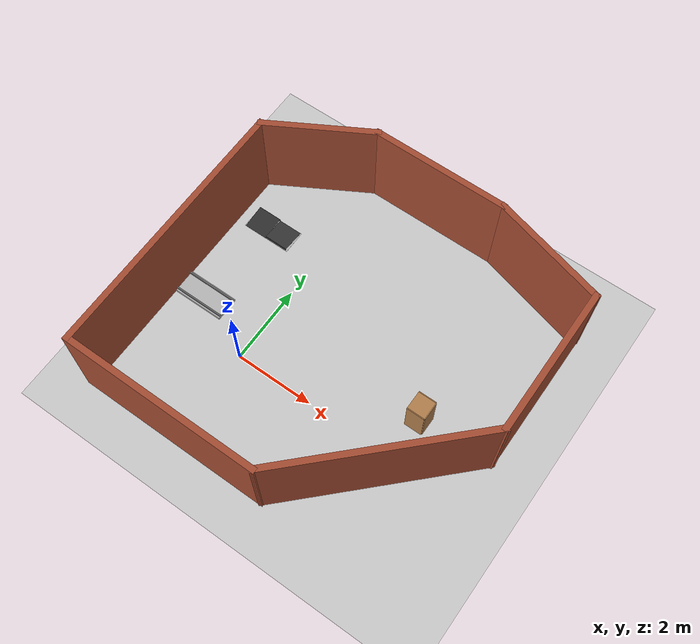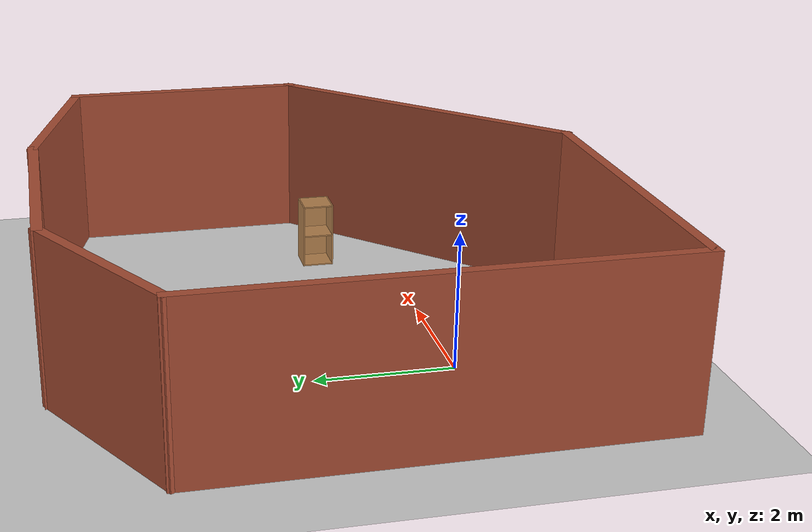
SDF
<sdf version="1.6">
 <world name="default">
  <light name="sun" type="directional">
   <pose>0 0 10 0 -0 0</pose>
   <diffuse>0.8 0.8 0.8 1</diffuse>
   <specular>0.1 0.1 0.1 1</specular>
   <attenuation>
    <range>1000</range>
    <constant>0.9</constant>
    <linear>0.01</linear>
    <quadratic>0.001</quadratic>
   </attenuation>
   <direction>-0.5 0.5 -1</direction>
  </light>
  <model name="ground_plane">
   <static>1</static>
   <link name="link">
    <collision name="collision">
     <geometry><plane><normal>0 0 1</normal><size>100 100</size></plane></geometry>
     <surface><friction><ode><mu>100</mu><mu2>50</mu2></ode></friction></surface>
    </collision>
    <visual name="visual">
     <cast_shadows>0</cast_shadows>
     <geometry><plane><normal>0 0 1</normal><size>100 100</size></plane></geometry>
     <material>
      <script><uri>file://media/materials/scripts/gazebo.material</uri><name>Gazebo/Grey</name></script>
     </material>
    </visual>
   </link>
  </model>
  <gravity>0 0 -9.8</gravity>
  <magnetic_field>6e-06 2.3e-05 -4.2e-05</magnetic_field>
  <atmosphere type="adiabatic"/>
  <physics name="default_physics" default="0" type="ode">
   <max_step_size>0.001</max_step_size>
   <real_time_factor>1</real_time_factor>
   <real_time_update_rate>1000</real_time_update_rate>
  </physics>
  <scene><ambient>0.4 0.4 0.4 1</ambient><background>0.7 0.7 0.7 1</background><shadows>1</shadows></scene>
  <spherical_coordinates>
   <surface_model>EARTH_WGS84</surface_model>
   <latitude_deg>0</latitude_deg>
   <longitude_deg>0</longitude_deg>
   <elevation>0</elevation>
   <heading_deg>0</heading_deg>
  </spherical_coordinates>
  <model name="frc2016_ramparts">
   <static>1</static>
   <link name="link">
    <visual name="platform">
     <pose>0 0 0.06967 0 -0 0</pose>
     <geometry><box><size>1.27 0.5969 0.003175</size></box></geometry>
    </visual>
    <collision name="platform">
     <pose>0 0 0.06967 0 -0 0</pose>
     <geometry><box><size>1.27 0.5969 0.003175</size></box></geometry>
    </collision>
    <visual name="ramp1">
     <pose>0.30472 0.00588 0.1109 -0.13 0 0</pose>
     <geometry><box><size>0.60957 0.588891 0.00462</size></box></geometry>
     <material><ambient>0.2 0.2 0.2 1</ambient><diffuse>0.2 0.2 0.2 1</diffuse></material>
    </visual>
    <collision name="ramp1">
     <pose>0.30472 0.00588 0.1109 -0.13 0 0</pose>
     <geometry><box><size>0.60957 0.588891 0.00462</size></box></geometry>
    </collision>
    <visual name="up1">
     <pose>0.30472 -0.28806 0.11072 0 -0 0</pose>
     <geometry><box><size>0.60957 0.00462 0.07872</size></box></geometry>
     <material><ambient>0.2 0.2 0.2 1</ambient><diffuse>0.2 0.2 0.2 1</diffuse></material>
    </visual>
    <collision name="up1">
     <pose>0.30472 -0.28806 0.11072 0 -0 0</pose>
     <geometry><box><size>0.60957 0.00462 0.07872</size></box></geometry>
    </collision>
    <visual name="ramp2">
     <pose>-0.30472 -0.00619 0.1109 0.13 -0 0</pose>
     <geometry><box><size>0.60957 0.588891 0.00462</size></box></geometry>
     <material><ambient>0.2 0.2 0.2 1</ambient><diffuse>0.2 0.2 0.2 1</diffuse></material>
    </visual>
    <collision name="ramp2">
     <pose>-0.30472 -0.00619 0.1109 0.13 -0 0</pose>
     <geometry><box><size>0.60957 0.588891 0.00462</size></box></geometry>
    </collision>
    <visual name="up2">
     <pose>-0.30472 0.28806 0.11072 0 -0 0</pose>
     <geometry><box><size>0.60957 0.00462 0.07872</size></box></geometry>
     <material><ambient>0.2 0.2 0.2 1</ambient><diffuse>0.2 0.2 0.2 1</diffuse></material>
    </visual>
    <collision name="up2">
     <pose>-0.30472 0.28806 0.11072 0 -0 0</pose>
     <geometry><box><size>0.60957 0.00462 0.07872</size></box></geometry>
    </collision>
   </link>
   <pose>-1.37724 3.11294 0 0 -0 0</pose>
  </model>
  <model name="frc2016_moat">
   <static>1</static>
   <link name="link">
    <inertial>
     <mass>10</mass>
     <pose>0 0 0.06738 0 -0 0</pose>
     <inertia><ixx>0.312195</ixx><ixy>0</ixy><ixz>0</ixz><iyy>1.35927</iyy><iyz>0</iyz><izz>1.64109</izz></inertia>
    </inertial>
    <visual name="platform">
     <pose>0 0 0.0381 0 -0 0</pose>
     <geometry><box><size>1.27 0.5969 0.0762</size></box></geometry>
    </visual>
    <collision name="platform">
     <pose>0 0 0.0381 0 -0 0</pose>
     <geometry><box><size>1.27 0.5969 0.0762</size></box></geometry>
    </collision>
    <visual name="tube1_side1">
     <pose>0 -0.25876 0.10301 0 -0 0</pose>
     <geometry><box><size>1.27 0.003175 0.0635</size></box></geometry>
     <material><ambient>0.46 0.46 0.46 1</ambient><diffuse>0.46 0.46 0.46 1</diffuse></material>
    </visual>
    <collision name="tube1_side1">
     <pose>0 -0.25876 0.10301 0 -0 0</pose>
     <geometry><box><size>1.27 0.003175 0.0635</size></box></geometry>
    </collision>
    <visual name="tube1_side2">
     <pose>0 -0.22384 0.10301 0 -0 0</pose>
     <geometry><box><size>1.27 0.003175 0.0635</size></box></geometry>
     <material><ambient>0.46 0.46 0.46 1</ambient><diffuse>0.46 0.46 0.46 1</diffuse></material>
    </visual>
    <collision name="tube1_side2">
     <pose>0 -0.22384 0.10301 0 -0 0</pose>
     <geometry><box><size>1.27 0.003175 0.0635</size></box></geometry>
    </collision>
    <visual name="tube1_top">
     <pose>0 -0.2413 0.13317 0 -0 0</pose>
     <geometry><box><size>1.27 0.0381 0.003175</size></box></geometry>
     <material><ambient>0.46 0.46 0.46 1</ambient><diffuse>0.46 0.46 0.46 1</diffuse></material>
    </visual>
    <collision name="tube1_top">
     <pose>0 -0.2413 0.13317 0 -0 0</pose>
     <geometry><box><size>1.27 0.0381 0.003175</size></box></geometry>
    </collision>
    <visual name="tube2_side1">
     <pose>0 0.22384 0.10301 0 -0 0</pose>
     <geometry><box><size>1.27 0.003175 0.0635</size></box></geometry>
     <material><ambient>0.46 0.46 0.46 1</ambient><diffuse>0.46 0.46 0.46 1</diffuse></material>
    </visual>
    <collision name="tube2_side1">
     <pose>0 0.22384 0.10301 0 -0 0</pose>
     <geometry><box><size>1.27 0.003175 0.0635</size></box></geometry>
    </collision>
    <visual name="tube2_side2">
     <pose>0 0.25876 0.10301 0 -0 0</pose>
     <geometry><box><size>1.27 0.003175 0.0635</size></box></geometry>
     <material><ambient>0.46 0.46 0.46 1</ambient><diffuse>0.46 0.46 0.46 1</diffuse></material>
    </visual>
    <collision name="tube2_side2">
     <pose>0 0.25876 0.10301 0 -0 0</pose>
     <geometry><box><size>1.27 0.003175 0.0635</size></box></geometry>
    </collision>
    <visual name="tube2_top">
     <pose>0 0.2413 0.13317 0 -0 0</pose>
     <geometry><box><size>1.27 0.0381 0.003175</size></box></geometry>
     <material><ambient>0.46 0.46 0.46 1</ambient><diffuse>0.46 0.46 0.46 1</diffuse></material>
    </visual>
    <collision name="tube2_top">
     <pose>0 0.2413 0.13317 0 -0 0</pose>
     <geometry><box><size>1.27 0.0381 0.003175</size></box></geometry>
    </collision>
   </link>
   <pose>-1.46925 0.657744 0.35629 0 -0 0</pose>
  </model>
  <model name="cabinet">
   <static>1</static>
   <link name="cabinet_bottom_plate">
    <inertial>
     <pose>0 0 -1 0 -0 0</pose>
     <inertia><ixx>2.05</ixx><ixy>0</ixy><ixz>0</ixz><iyy>2.05</iyy><iyz>0</iyz><izz>2.05</izz></inertia>
     <mass>25</mass>
    </inertial>
    <collision name="cabinet_bottom_plate_geom">
     <pose>0 0 0.01 0 -0 0</pose>
     <geometry><box><size>0.45 0.45 0.02</size></box></geometry>
    </collision>
    <visual name="cabinet_bottom_plate_geom_visual">
     <pose>0 0 0.01 0 -0 0</pose>
     <geometry><box><size>0.45 0.45 0.02</size></box></geometry>
     <material>
      <script><uri>file://media/materials/scripts/gazebo.material</uri><name>Gazebo/Wood</name></script>
     </material>
    </visual>
    <collision name="cabinet_bottom_plate_geom_cabinet_back_plate">
     <pose>0.235 0 0.51 0 -0 0</pose>
     <geometry><box><size>0.02 0.45 1.02</size></box></geometry>
    </collision>
    <visual name="cabinet_bottom_plate_geom_cabinet_back_plate_visual">
     <pose>0.235 0 0.51 0 -0 0</pose>
     <geometry><box><size>0.02 0.45 1.02</size></box></geometry>
     <material>
      <script><uri>file://media/materials/scripts/gazebo.material</uri><name>Gazebo/Wood</name></script>
     </material>
    </visual>
    <collision name="cabinet_bottom_plate_geom_cabinet_left_plate">
     <pose>0 0.235 0.51 0 -0 0</pose>
     <geometry><box><size>0.45 0.02 1.02</size></box></geometry>
    </collision>
    <visual name="cabinet_bottom_plate_geom_cabinet_left_plate_visual">
     <pose>0 0.235 0.51 0 -0 0</pose>
     <geometry><box><size>0.45 0.02 1.02</size></box></geometry>
     <material>
      <script><uri>file://media/materials/scripts/gazebo.material</uri><name>Gazebo/Wood</name></script>
     </material>
    </visual>
    <collision name="cabinet_bottom_plate_geom_cabinet_middle_plate">
     <pose>0 0 0.51 0 -0 0</pose>
     <geometry><box><size>0.45 0.45 0.02</size></box></geometry>
    </collision>
    <visual name="cabinet_bottom_plate_geom_cabinet_middle_plate_visual">
     <pose>0 0 0.51 0 -0 0</pose>
     <geometry><box><size>0.45 0.45 0.02</size></box></geometry>
     <material>
      <script><uri>file://media/materials/scripts/gazebo.material</uri><name>Gazebo/Wood</name></script>
     </material>
    </visual>
    <collision name="cabinet_bottom_plate_geom_cabinet_right_plate">
     <pose>0 -0.235 0.51 0 -0 0</pose>
     <geometry><box><size>0.45 0.02 1.02</size></box></geometry>
    </collision>
    <visual name="cabinet_bottom_plate_geom_cabinet_right_plate_visual">
     <pose>0 -0.235 0.51 0 -0 0</pose>
     <geometry><box><size>0.45 0.02 1.02</size></box></geometry>
     <material>
      <script><uri>file://media/materials/scripts/gazebo.material</uri><name>Gazebo/Wood</name></script>
     </material>
    </visual>
    <collision name="cabinet_bottom_plate_geom_cabinet_top_plate">
     <pose>0 0 1.01 0 -0 0</pose>
     <geometry><box><size>0.45 0.45 0.02</size></box></geometry>
    </collision>
    <visual name="cabinet_bottom_plate_geom_cabinet_top_plate_visual">
     <pose>0 0 1.01 0 -0 0</pose>
     <geometry><box><size>0.45 0.45 0.02</size></box></geometry>
     <material>
      <script><uri>file://media/materials/scripts/gazebo.material</uri><name>Gazebo/Wood</name></script>
     </material>
    </visual>
   </link>
   <pose>4.24338 1.09643 0 0 -0 0</pose>
  </model>
  <model name="Untitled_0">
   <pose>1.87697 1.53555 0 0 -0 0</pose>
   <link name="Wall_0">
    <collision name="Wall_0_Collision">
     <geometry><box><size>6.75 0.15 2.5</size></box></geometry>
     <pose>0 0 1.25 0 -0 0</pose>
    </collision>
    <visual name="Wall_0_Visual">
     <pose>0 0 1.25 0 -0 0</pose>
     <geometry><box><size>6.75 0.15 2.5</size></box></geometry>
     <material>
      <script><uri>file://media/materials/scripts/gazebo.material</uri><name>Gazebo/Bricks</name></script>
      <ambient>1 1 1 1</ambient>
     </material>
     <meta><layer>0</layer></meta>
    </visual>
    <pose>-4.22999 -0.670067 0 0 -0 -1.5708</pose>
   </link>
   <link name="Wall_1">
    <collision name="Wall_1_Collision">
     <geometry><box><size>5 0.15 2.5</size></box></geometry>
     <pose>0 0 1.25 0 -0 0</pose>
    </collision>
    <visual name="Wall_1_Visual">
     <pose>0 0 1.25 0 -0 0</pose>
     <geometry><box><size>5 0.15 2.5</size></box></geometry>
     <material>
      <script><uri>file://media/materials/scripts/gazebo.material</uri><name>Gazebo/Bricks</name></script>
      <ambient>1 1 1 1</ambient>
     </material>
     <meta><layer>0</layer></meta>
    </visual>
    <pose>-1.80499 -3.97007 0 0 -0 0</pose>
   </link>
   <link name="Wall_2">
    <collision name="Wall_2_Collision">
     <geometry><box><size>5.25 0.15 2.5</size></box></geometry>
     <pose>0 0 1.25 0 -0 0</pose>
    </collision>
    <visual name="Wall_2_Visual">
     <pose>0 0 1.25 0 -0 0</pose>
     <geometry><box><size>5.25 0.15 2.5</size></box></geometry>
     <material>
      <script><uri>file://media/materials/scripts/gazebo.material</uri><name>Gazebo/Bricks</name></script>
      <ambient>1 1 1 1</ambient>
     </material>
     <meta><layer>0</layer></meta>
    </visual>
    <pose>2.42313 -2.16694 0 0 -0 0.785398</pose>
   </link>
   <link name="Wall_3">
    <collision name="Wall_3_Collision">
     <geometry><box><size>3.75 0.15 2.5</size></box></geometry>
     <pose>0 0 1.25 0 -0 0</pose>
    </collision>
    <visual name="Wall_3_Visual">
     <pose>0 0 1.25 0 -0 0</pose>
     <geometry><box><size>3.75 0.15 2.5</size></box></geometry>
     <material>
      <script><uri>file://media/materials/scripts/gazebo.material</uri><name>Gazebo/Bricks</name></script>
      <ambient>1 1 1 1</ambient>
     </material>
     <meta><layer>0</layer></meta>
    </visual>
    <pose>4.22625 1.43618 0 0 -0 1.5708</pose>
   </link>
   <link name="Wall_4">
    <collision name="Wall_4_Collision">
     <geometry><box><size>3 0.15 2.5</size></box></geometry>
     <pose>0 0 1.25 0 -0 0</pose>
    </collision>
    <visual name="Wall_4_Visual">
     <pose>0 0 1.25 0 -0 0</pose>
     <geometry><box><size>3 0.15 2.5</size></box></geometry>
     <material>
      <script><uri>file://media/materials/scripts/gazebo.material</uri><name>Gazebo/Bricks</name></script>
      <ambient>1 1 1 1</ambient>
     </material>
     <meta><layer>0</layer></meta>
    </visual>
    <pose>2.84981 3.605 0 0 -0 2.87979</pose>
   </link>
   <link name="Wall_5">
    <collision name="Wall_5_Collision">
     <geometry><box><size>3.5 0.15 2.5</size></box></geometry>
     <pose>0 0 1.25 0 -0 0</pose>
    </collision>
    <visual name="Wall_5_Visual">
     <pose>0 0 1.25 0 -0 0</pose>
     <geometry><box><size>3.5 0.15 2.5</size></box></geometry>
     <material>
      <script><uri>file://media/materials/scripts/gazebo.material</uri><name>Gazebo/Bricks</name></script>
      <ambient>1 1 1 1</ambient>
     </material>
     <meta><layer>0</layer></meta>
    </visual>
    <pose>-0.201639 3.97381 0 0 -0 3.14159</pose>
   </link>
   <link name="Wall_6">
    <collision name="Wall_6_Collision">
     <geometry><box><size>2.86004 0.15 2.5</size></box></geometry>
     <pose>0 0 1.25 0 -0 0</pose>
    </collision>
    <visual name="Wall_6_Visual">
     <pose>0 0 1.25 0 -0 0</pose>
     <geometry><box><size>2.86004 0.15 2.5</size></box></geometry>
     <material>
      <script><uri>file://media/materials/scripts/gazebo.material</uri><name>Gazebo/Bricks</name></script>
      <ambient>1 1 1 1</ambient>
     </material>
     <meta><layer>0</layer></meta>
    </visual>
    <pose>-3.05332 3.30187 0 0 -0 -2.62273</pose>
   </link>
   <static>1</static>
  </model>
 </world>
</sdf>
